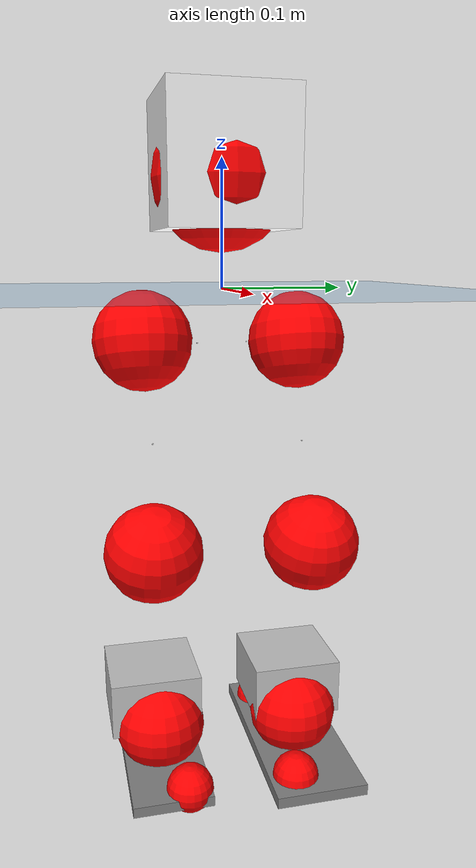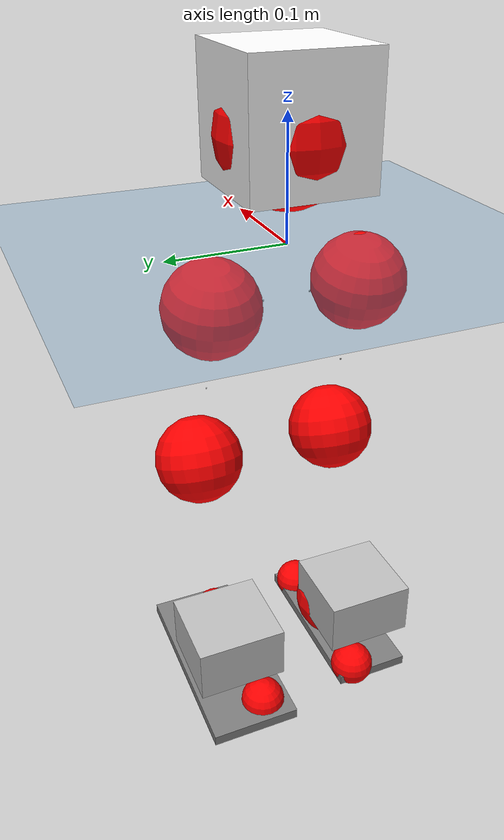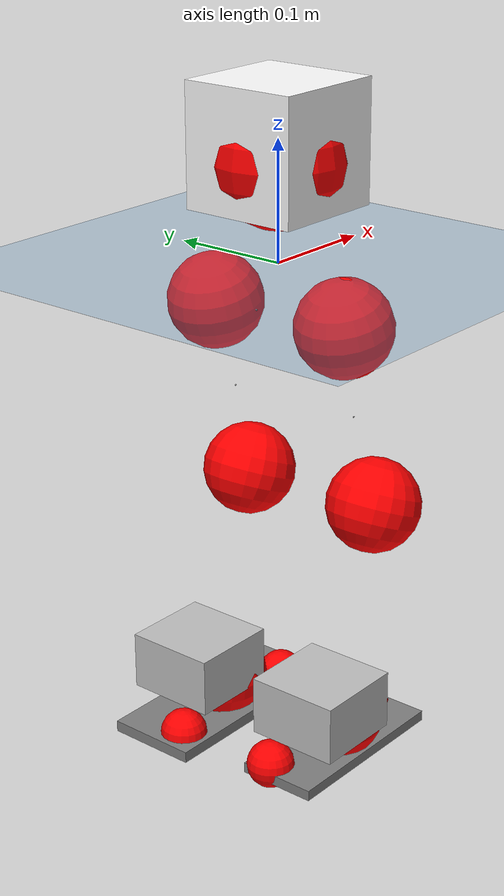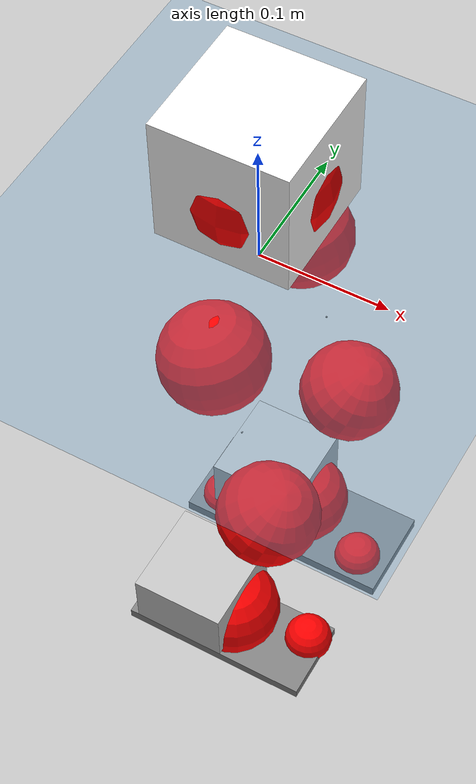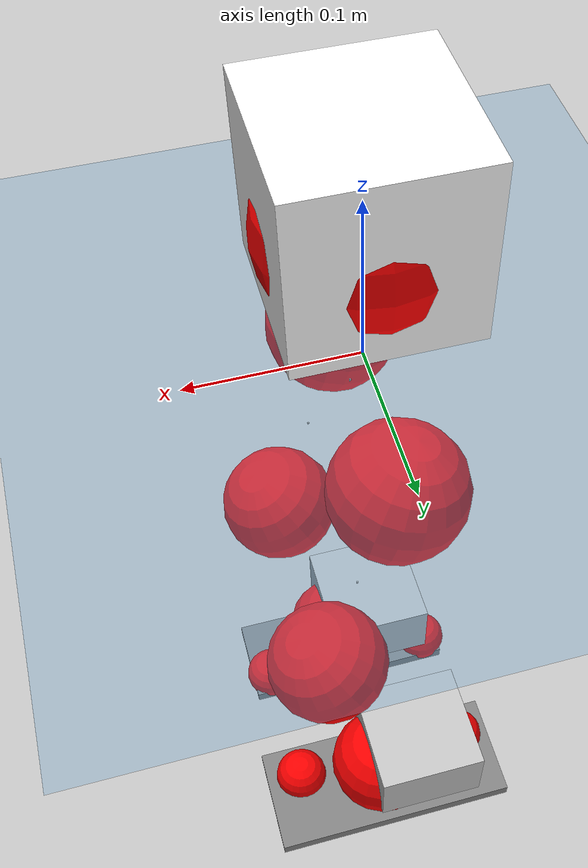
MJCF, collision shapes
<mujoco model="pi_12dof_release_v1">
  <compiler angle="radian" assetdir="assets" balanceinertia="true" inertiafromgeom="false"/>

  <option timestep="0.005" density="1.2" viscosity="2e-05"/>

  <size nkey="1"/>

  <visual>
    <quality shadowsize="8192"/>
    <map shadowclip="0.5"/>
  </visual>

  <default>
    <default class="/">
      <joint armature="0.01" damping="0.01" frictionloss="0.01"/>
      <geom contype="0" conaffinity="0" group="1" solref="-1000 -80"/>
      <site size="0.01 0.005 0.005" group="5"/>
      <general forcelimited="true" biastype="affine" gainprm="20" biasprm="0 -20 -0.5"/>
      <default class="foot">
        <geom size="0.0845 0.036 0.005" type="box" condim="6" group="4" priority="1" friction="0.9 0.2 0.2" solimp="0.015 1 0.005"/>
      </default>
      <default class="reward_collision_sphere">
        <geom group="5" rgba="1 0 0 1"/>
      </default>
    </default>
  </default>

  <asset>
    <texture type="skybox" colorspace="auto" name="//unnamed_texture_0" builtin="gradient" rgb1="0.95 0.95 0.95" rgb2="0.95 0.95 0.95" width="100" height="600"/>
    <texture type="2d" colorspace="auto" name="texplane" builtin="checker" rgb1="0.345 0.575 0.748" rgb2="0.345 0.575 0.748" markrgb="1 1 1" width="512" height="512"/>
    <material name="MatPlane" class="/" texture="texplane" texuniform="true" texrepeat="2 2" specular="0.9"/>
    <mesh name="baselink_1" class="/" file="baselink_1.STL"/>
    <mesh name="r_hip_pitch_link" class="/" file="r_hip_pitch_link.STL"/>
    <mesh name="r_hip_roll_link" class="/" file="r_hip_roll_link.STL"/>
    <mesh name="r_thigh_link" class="/" file="r_thigh_link.STL"/>
    <mesh name="r_calf_link" class="/" file="r_calf_link.STL"/>
    <mesh name="r_ankle_pitch_link" class="/" file="r_ankle_pitch_link.STL"/>
    <mesh name="r_ankle_roll_link" class="/" file="r_ankle_roll_link.STL"/>
    <mesh name="l_hip_pitch_link" class="/" file="l_hip_pitch_link.STL"/>
    <mesh name="l_hip_roll_link" class="/" file="l_hip_roll_link.STL"/>
    <mesh name="l_thigh_link" class="/" file="l_thigh_link.STL"/>
    <mesh name="l_calf_link" class="/" file="l_calf_link.STL"/>
    <mesh name="l_ankle_pitch_link" class="/" file="l_ankle_pitch_link.STL"/>
    <mesh name="l_ankle_roll_link" class="/" file="l_ankle_roll_link.STL"/>
  </asset>

  <worldbody>
    <geom name="floor" class="/" size="100 100 0.125" type="plane" group="0" material="MatPlane"/>
    <light name="toplight_shadow" class="/" pos="0 0 5" dir="0.0990148 0.0990148 -0.990148" type="directional" ambient="0.04 0.04 0.04" diffuse="0.55 0.55 0.55" specular="0.12 0.12 0.12"/>
    <light name="toplight_fill" class="/" pos="0 0 5" dir="0.0990148 0.0990148 -0.990148" type="directional" castshadow="false" ambient="0.04 0.04 0.04" diffuse="0.3 0.3 0.3" specular="0.08 0.08 0.08"/>
    <body name="trunk" pos="0.000132769 -0.000146841 -0.0028261" quat="1 -5.37536e-05 4.30481e-05 0.000181159">
      <inertial pos="0.00121659 0.00177962 0.0524512" quat="0.695232 0.0102541 0.00901323 0.718656" mass="2.17187" diaginertia="0.00919881 0.00306696 0.011775"/>
      <joint name="//unnamed_joint_0" type="free"/>
      <geom name="//unnamed_geom_1" class="/" type="mesh" density="0" rgba="1 1 1 1" mesh="baselink_1"/>
      <geom name="//unnamed_geom_2" class="/" size="0.050639 0.050639 0.050639" pos="0 0 0.0989563" type="box" rgba="1 1 1 1"/>
      <geom name="//unnamed_geom_3" class="reward_collision_sphere" size="0.0557029" pos="0 0 0.0865868"/>
      <site name="imu" class="/" pos="0.0070684 -0.0131706 0.00829422" size="0.0101278"/>
      <camera name="track" class="/" pos="0 -1.62628 0" quat="0.707107 0.707107 0 0" mode="trackcom"/>
      <camera name="ego_camera" class="/" pos="0.0741187 0 0.222652" quat="-0.5 -0.5 0.5 0.5"/>
      <body name="r_hip_pitch_link" pos="0.00158776 -0.0210434 -0.0401793" quat="0.992217 0.000464054 -0.124522 3.5161e-05">
        <inertial pos="-0.00147 -0.0444394 -0.00252087" quat="-0.016463 0.704033 -0.0275325 0.709443" mass="0.377566" diaginertia="0.000101401 3.33663e-05 0.000245934"/>
        <joint name="r_hip_pitch_joint" class="/" pos="0 0 0" axis="0.0058617 -0.999983 -0.000465319" stiffness="0.0117708" range="-1.73146 1.19222" armature="0.00875457" damping="0.00183213" frictionloss="0.00872812"/>
        <geom name="//unnamed_geom_4" class="/" type="mesh" density="0" rgba="0.75294 0.75294 0.75294 1" mesh="r_hip_pitch_link"/>
        <geom name="//unnamed_geom_5" class="/" size="0.00050639 0.00050639 0.00050639" type="box" rgba="0.75294 0.75294 0.75294 1"/>
        <body name="r_hip_roll_link" pos="-0.000183152 -0.0444815 0.00250682" quat="1 0.000136869 5.53996e-06 6.54017e-05">
          <inertial pos="-0.00118035 0.00105603 -0.0782902" quat="0.703974 -0.0809133 -0.0829074 0.700714" mass="0.394424" diaginertia="0.000313355 9.93896e-05 0.000355648"/>
          <joint name="r_hip_roll_joint" class="/" pos="0 0 0" axis="-0.999924 -0.00380141 -0.0117592" range="-0.119028 0.518168" armature="0.0104389" damping="0.0202818" frictionloss="0.0114903"/>
          <geom name="//unnamed_geom_6" class="/" type="mesh" density="0" rgba="0.75294 0.75294 0.75294 1" mesh="r_hip_roll_link"/>
          <geom name="//unnamed_geom_7" class="/" size="0.00050639 0.00050639 0.00050639" type="box" rgba="0.75294 0.75294 0.75294 1"/>
          <geom name="//unnamed_geom_8" class="reward_collision_sphere" size="0.0405112"/>
          <body name="r_thigh_link" pos="-0.00159368 0.00329029 -0.0831012" quat="0.999999 -0.000953522 -0.00029223 -0.000238417">
            <inertial pos="6.8805e-06 0.000741228 -0.0584933" quat="0.737409 0.675447 -0.000397204 0.00026826" mass="0.110784" diaginertia="0.00011759 3.34116e-05 0.000159921"/>
            <joint name="r_thigh_joint" class="/" pos="0 0 0" axis="-0.00248728 -0.00375368 -0.99999" range="-0.304712 0.541421" armature="0.011396" damping="0.00662531" frictionloss="0.0102412"/>
            <geom name="//unnamed_geom_9" class="/" type="mesh" density="0" rgba="0.75294 0.75294 0.75294 1" mesh="r_thigh_link"/>
            <geom name="//unnamed_geom_10" class="/" size="0.00050639 0.00050639 0.00050639" type="box" rgba="0.75294 0.75294 0.75294 1"/>
            <body name="r_calf_link" pos="0.00225809 -0.00434587 -0.0881723" quat="0.947947 -0.000748481 0.318427 0.00053396">
              <inertial pos="0.000349334 -0.000830291 -0.0860323" quat="0.999972 -0.00222077 0.00121156 0.00697186" mass="0.832681" diaginertia="0.00326877 0.00117361 0.000504775"/>
              <joint name="r_calf_joint" class="/" pos="0 0 0" axis="-0.0019768 -0.999962 -0.00852146" stiffness="0.0107276" range="-1.69232 0.646639" armature="0.00986979" damping="0.00761828" frictionloss="0.00972096"/>
              <geom name="//unnamed_geom_11" class="/" type="mesh" density="0" rgba="0.75294 0.75294 0.75294 1" mesh="r_calf_link"/>
              <geom name="//unnamed_geom_12" class="/" size="0.00050639 0.00050639 0.00050639" type="box" rgba="0.75294 0.75294 0.75294 1"/>
              <geom name="//unnamed_geom_13" class="reward_collision_sphere" size="0.0405112"/>
              <body name="r_ankle_pitch_link" pos="0.00145396 0.00310145 -0.172759" quat="0.979997 0.000228452 -0.199013 -0.000201444">
                <inertial pos="0.00522579 0.00369505 -0.000114627" quat="0.00318554 0.706019 -0.00400262 0.708174" mass="0.179627" diaginertia="0.000286827 7.78431e-05 0.00035054"/>
                <joint name="r_ankle_pitch_joint" class="/" pos="0 0 0" axis="0.0097199 -0.999953 -1.20748e-06" range="-1.35346 0.544041" armature="0.0100971" damping="0.0199194" frictionloss="0.0113727"/>
                <geom name="//unnamed_geom_14" class="/" type="mesh" density="0" rgba="0.75294 0.75294 0.75294 1" mesh="r_ankle_pitch_link"/>
                <geom name="//unnamed_geom_15" class="/" size="0.0394984 0.0405112 0.0253195" type="box" rgba="0.75294 0.75294 0.75294 1"/>
                <body name="r_ankle_roll_link" pos="0.0763316 0.00362117 0.00262412" quat="1 -0.000181524 -0.000171664 -9.63532e-06">
                  <inertial pos="-0.0253683 -5.43246e-05 -0.0165011" quat="0.557834 0.430622 0.437842 0.558284" mass="0.536798" diaginertia="0.00110981 0.000369831 0.000826976"/>
                  <joint name="r_ankle_roll_joint" class="/" pos="0 0 0" axis="-1 3.65595e-05 -3.20824e-05" range="-0.169092 0.162277" armature="0.010187" damping="0.00897926" frictionloss="0.0107124"/>
                  <geom name="//unnamed_geom_16" class="/" type="mesh" density="0" rgba="0.75294 0.75294 0.75294 1" mesh="r_ankle_roll_link"/>
                  <geom name="//unnamed_geom_17" class="/" type="mesh" rgba="0.75294 0.75294 0.75294 1" mesh="r_ankle_roll_link"/>
                  <geom name="right_foot" class="foot" size="0.0809962 0.034287 0.00460491" pos="-0.0504007 0 -0.054426"/>
                  <geom name="//unnamed_geom_19" class="reward_collision_sphere" size="0.0405112" pos="-0.0494125 0 -0.0247391"/>
                  <geom name="//unnamed_geom_20" class="reward_collision_sphere" size="0.0202556" pos="0.0148237 0.0162628 -0.0494782"/>
                  <geom name="//unnamed_geom_21" class="reward_collision_sphere" size="0.0202556" pos="-0.11859 0.0162628 -0.0494782"/>
                  <site name="right_foot" class="foot" pos="-0.0504007 0 -0.054426" size="0.0101278"/>
                </body>
              </body>
            </body>
          </body>
        </body>
      </body>
      <body name="l_hip_pitch_link" pos="-0.00174899 0.0211711 -0.0402831" quat="0.9922 7.1821e-05 -0.124652 0.000187025">
        <inertial pos="-0.00151122 0.041437 -0.000392328" quat="-0.0401532 0.707403 0.0290688 0.70507" mass="0.400071" diaginertia="0.00012282 3.8621e-05 0.000283303"/>
        <joint name="l_hip_pitch_joint" class="/" pos="0 0 0" axis="0.00536678 0.999984 -0.00170299" range="-1.19585 1.71047" armature="0.011605" damping="0.0246058" frictionloss="0.00885377"/>
        <geom name="//unnamed_geom_22" class="/" type="mesh" density="0" rgba="0.75294 0.75294 0.75294 1" mesh="l_hip_pitch_link"/>
        <geom name="//unnamed_geom_23" class="/" size="0.00050639 0.00050639 0.00050639" type="box" rgba="0.75294 0.75294 0.75294 1"/>
        <body name="l_hip_roll_link" pos="6.43976e-05 0.0435036 0.000162876" quat="0.999999 -0.00110653 0.0002524 0.000255085">
          <inertial pos="-0.00143462 -0.00294799 -0.0761837" quat="0.704061 -0.0763579 -0.0719675 0.702345" mass="0.39961" diaginertia="0.000323274 9.76545e-05 0.000392345"/>
          <joint name="l_hip_roll_joint" class="/" pos="0 0 0" axis="-0.999962 0.00196875 -0.0084649" range="-0.480801 0.0821793" armature="0.0103388" damping="0.0112451" frictionloss="0.00959869"/>
          <geom name="//unnamed_geom_24" class="/" type="mesh" density="0" rgba="0.75294 0.75294 0.75294 1" mesh="l_hip_roll_link"/>
          <geom name="//unnamed_geom_25" class="/" size="0.00050639 0.00050639 0.00050639" type="box" rgba="0.75294 0.75294 0.75294 1"/>
          <geom name="//unnamed_geom_26" class="reward_collision_sphere" size="0.0405112"/>
          <body name="l_thigh_link" pos="0.00258197 -0.00021046 -0.0853366" quat="0.999999 0.000432931 -0.000839229 -0.000936246">
            <inertial pos="0.00282857 -0.00301705 -0.0614609" quat="0.675417 0.737436 -7.87173e-05 1.91463e-05" mass="0.11466" diaginertia="0.000117074 3.4775e-05 0.000170359"/>
            <joint name="l_thigh_joint" class="/" pos="0 0 0" axis="-0.00117258 0.000152545 -0.999999" range="-0.589645 0.251703" armature="0.0091354" damping="0.0203031" frictionloss="0.00869627"/>
            <geom name="//unnamed_geom_27" class="/" type="mesh" density="0" rgba="0.75294 0.75294 0.75294 1" mesh="l_thigh_link"/>
            <geom name="//unnamed_geom_28" class="/" size="0.00050639 0.00050639 0.00050639" type="box" rgba="0.75294 0.75294 0.75294 1"/>
            <body name="l_calf_link" pos="-0.000166003 0.00321358 -0.0867086" quat="0.94779 -2.06545e-05 0.318894 -0.00118681">
              <inertial pos="-0.000150065 0.0048264 -0.0890037" quat="0.999967 0.00657617 -0.00355548 0.0032571" mass="0.808778" diaginertia="0.00331356 0.00116354 0.000489486"/>
              <joint name="l_calf_joint" class="/" pos="0 0 0" axis="0.0060624 0.99998 0.00172756" stiffness="0.0100367" range="-0.646214 1.60505" armature="0.0100962" damping="0.00980102" frictionloss="0.00869959"/>
              <geom name="//unnamed_geom_29" class="/" type="mesh" density="0" rgba="0.75294 0.75294 0.75294 1" mesh="l_calf_link"/>
              <geom name="//unnamed_geom_30" class="/" size="0.00050639 0.00050639 0.00050639" type="box" rgba="0.75294 0.75294 0.75294 1"/>
              <geom name="//unnamed_geom_31" class="reward_collision_sphere" size="0.0405112"/>
              <body name="l_ankle_pitch_link" pos="-7.05825e-05 0.00176302 -0.173984" quat="0.980005 -7.05466e-05 -0.198974 0.000271846">
                <inertial pos="0.00497144 8.7289e-05 0.00259939" quat="0.00793667 0.702599 0.00836991 0.711492" mass="0.180325" diaginertia="0.000289958 7.80788e-05 0.000347652"/>
                <joint name="l_ankle_pitch_joint" class="/" pos="0 0 0" axis="0.00954323 0.999953 0.00186126" stiffness="0.00271136" range="-0.505584 1.30901" armature="0.010155" damping="0.00233739" frictionloss="0.0100378"/>
                <geom name="//unnamed_geom_32" class="/" type="mesh" density="0" rgba="0.75294 0.75294 0.75294 1" mesh="l_ankle_pitch_link"/>
                <geom name="//unnamed_geom_33" class="/" size="0.0394984 0.0405112 0.0253195" type="box" rgba="0.75294 0.75294 0.75294 1"/>
                <body name="l_ankle_roll_link" pos="0.0765891 -0.00161948 0.00065954" quat="0.999999 0.00136558 -6.17847e-05 0.000231088">
                  <inertial pos="-0.0222507 0.000352155 -0.0181114" quat="0.560034 0.425257 0.439645 0.558777" mass="0.508621" diaginertia="0.00102973 0.000350824 0.000803215"/>
                  <joint name="l_ankle_roll_joint" class="/" pos="0 0 0" axis="-0.999991 -0.00378783 0.00199592" range="-0.159635 0.138329" armature="0.00994451" damping="0.00547334" frictionloss="0.0096342"/>
                  <geom name="//unnamed_geom_34" class="/" type="mesh" density="0" rgba="0.75294 0.75294 0.75294 1" mesh="l_ankle_roll_link"/>
                  <geom name="//unnamed_geom_35" class="/" type="mesh" rgba="0.75294 0.75294 0.75294 1" mesh="l_ankle_roll_link"/>
                  <geom name="left_foot" class="foot" size="0.0932141 0.0404907 0.00498443" pos="-0.0504007 0 -0.054426"/>
                  <geom name="//unnamed_geom_37" class="reward_collision_sphere" size="0.0405112" pos="-0.0494125 0 -0.0247391"/>
                  <geom name="//unnamed_geom_38" class="reward_collision_sphere" size="0.0202556" pos="0.0148237 -0.0162628 -0.0494782"/>
                  <geom name="//unnamed_geom_39" class="reward_collision_sphere" size="0.0202556" pos="-0.11859 -0.0162628 -0.0494782"/>
                  <site name="left_foot" class="foot" pos="-0.0504007 0 -0.054426" size="0.0101278"/>
                </body>
              </body>
            </body>
          </body>
        </body>
      </body>
    </body>
  </worldbody>

  <contact>
    <pair class="/" geom1="floor" geom2="right_foot" name="//unnamed_contact_1"/>
    <pair class="/" geom1="floor" geom2="left_foot" name="//unnamed_contact_0"/>
  </contact>

  <actuator>
    <general name="r_hip_pitch_joint" class="/" joint="r_hip_pitch_joint" forcerange="-19.0651 19.0651" gainprm="19.363" biasprm="0 -19.363 -0.516496"/>
    <general name="r_hip_roll_joint" class="/" joint="r_hip_roll_joint" forcerange="-21.0772 21.0772" gainprm="19.363" biasprm="0 -19.363 -0.516496"/>
    <general name="r_thigh_joint" class="/" joint="r_thigh_joint" forcerange="-19.1033 19.1033" gainprm="19.363" biasprm="0 -19.363 -0.516496"/>
    <general name="r_calf_joint" class="/" joint="r_calf_joint" forcerange="-22.2919 22.2919" gainprm="19.363" biasprm="0 -19.363 -0.516496"/>
    <general name="r_ankle_pitch_joint" class="/" joint="r_ankle_pitch_joint" forcerange="-23.51 23.51" gainprm="19.363" biasprm="0 -19.363 -0.516496"/>
    <general name="r_ankle_roll_joint" class="/" joint="r_ankle_roll_joint" forcerange="-22.9411 22.9411" gainprm="19.363" biasprm="0 -19.363 -0.516496"/>
    <general name="l_hip_pitch_joint" class="/" joint="l_hip_pitch_joint" forcerange="-19.1782 19.1782" gainprm="19.363" biasprm="0 -19.363 -0.516496"/>
    <general name="l_hip_roll_joint" class="/" joint="l_hip_roll_joint" forcerange="-20.434 20.434" gainprm="19.363" biasprm="0 -19.363 -0.516496"/>
    <general name="l_thigh_joint" class="/" joint="l_thigh_joint" forcerange="-21.6447 21.6447" gainprm="19.363" biasprm="0 -19.363 -0.516496"/>
    <general name="l_calf_joint" class="/" joint="l_calf_joint" forcerange="-20.5053 20.5053" gainprm="19.363" biasprm="0 -19.363 -0.516496"/>
    <general name="l_ankle_pitch_joint" class="/" joint="l_ankle_pitch_joint" forcerange="-22.3374 22.3374" gainprm="19.363" biasprm="0 -19.363 -0.516496"/>
    <general name="l_ankle_roll_joint" class="/" joint="l_ankle_roll_joint" forcerange="-19.4382 19.4382" gainprm="19.363" biasprm="0 -19.363 -0.516496"/>
  </actuator>

  <sensor>
    <gyro site="imu" name="imu_angular_velocity"/>
    <velocimeter site="imu" name="imu_linear_velocity"/>
    <framelinvel objtype="site" objname="left_foot" name="left_foot_global_linear_velocity"/>
    <framelinvel objtype="site" objname="right_foot" name="right_foot_global_linear_velocity"/>
  </sensor>

  <keyframe>
    <key name="home" qpos="0 0 0.291 1 0 0 0 0.4 0 0 -0.8 0.4 0 -0.4 0 0 0.8 -0.4 0"/>
  </keyframe>
</mujoco>
